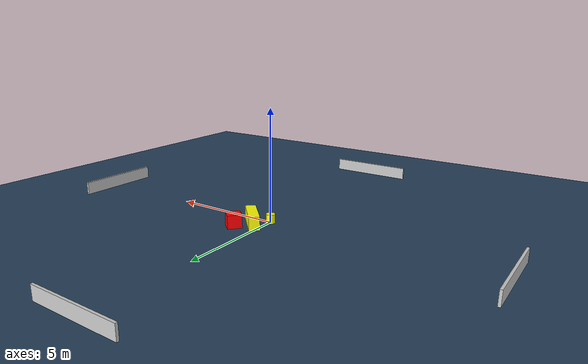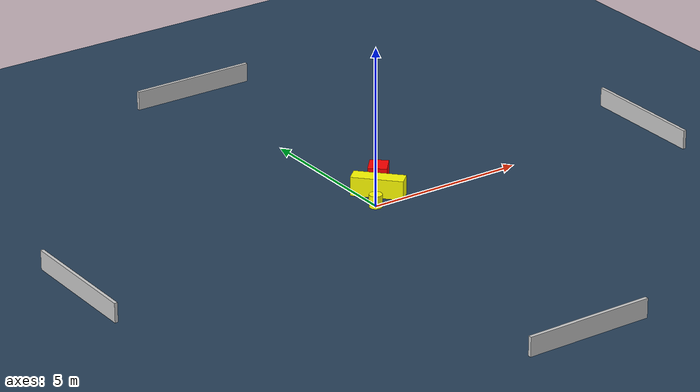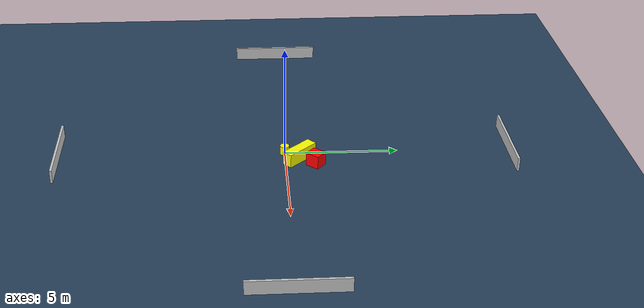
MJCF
<?xml version="1.0" ?>
<mujoco model="generated_environment">
  <option timestep="0.01" integrator="RK4" cone="elliptic"/>
  <default>
    <geom density="1"/>
  </default>
  <asset>
    <texture builtin="gradient" height="3072" name="skybox" rgb1="0.3 0.5 0.7" rgb2="0 0 0" type="skybox" width="512"/>
    <texture builtin="checker" height="300" name="groundplane" rgb1="0.2 0.3 0.4" rgb2="0.1 0.2 0.3" type="2d" width="300"/>
    <material name="groundplane" reflectance="0.2" texrepeat="5 5" texture="groundplane"/>
  </asset>
  <worldbody>
    <light dir="0 0 -1" directional="true" pos="0 0 1.5"/>
    <geom condim="3" friction="0.5 0.005 0.001" material="groundplane" name="floor" pos="0 0 0" size="0 0 0.05" type="plane"/>
    <body name="walls">
      <geom name="wall_1" condim="4" pos="-10.0 0.0 0.3" rgba="0.800000011920929 0.800000011920929 0.800000011920929 1.0" size="0.05 2.0 0.3" type="box"/>
      <geom name="wall_2" condim="4" pos="10.0 0.0 0.3" rgba="0.800000011920929 0.800000011920929 0.800000011920929 1.0" size="0.05 2.0 0.3" type="box"/>
      <geom name="wall_3" condim="4" pos="0.0 -10.0 0.3" rgba="0.800000011920929 0.800000011920929 0.800000011920929 1.0" size="2.0 0.05 0.3" type="box"/>
      <geom name="wall_4" condim="4" pos="0.0 10.0 0.3" rgba="0.800000011920929 0.800000011920929 0.800000011920929 1.0" size="2.0 0.05 0.3" type="box"/>
    </body>
    <body name="robot">
      <joint name="joint_x" type="slide" pos="0 0 0" axis="1 0 0"/>
      <joint name="joint_y" type="slide" pos="0 0 0" axis="0 1 0"/>
      <geom name="robot" type="cylinder" pos="0.0 0.0 0.2" size="0.2 0.2 0.0" mass="5.0" friction="1.0 0.005 0.0001" condim="4" rgba="1.0 1.0 0.0 1.0"/>
    </body>
    <body name="obstacle_1_movable">
      <geom name="obstacle_1_movable" condim="4" pos="0.5315852138212029 0.6224795053008984 0.3" euler="0 0 223.1626305387907" friction="0.0 0.005 0.001" rgba="1.0 1.0 0.0 1.0" size="0.23866861308954054 0.7947953512558927 0.3" type="box" mass="0.1"/>
      <joint type="free"/>
    </body>
    <body name="obstacle_2_static">
      <geom name="obstacle_2_static" condim="4" pos="1.0090535887500682 1.3094119807083986 0.3" euler="0 0 49.47243324553653" friction="0.0 0.005 0.001" rgba="1.0 0.0 0.0 1.0" size="0.31998026045630007 0.28883777219569307 0.3" type="box"/>
    </body>
  </worldbody>
  <actuator>
    <motor name="actuator_x" joint="joint_x" gear="1" ctrlrange="-1 1"/>
    <motor name="actuator_y" joint="joint_y" gear="1" ctrlrange="-1 1"/>
  </actuator>
</mujoco>
